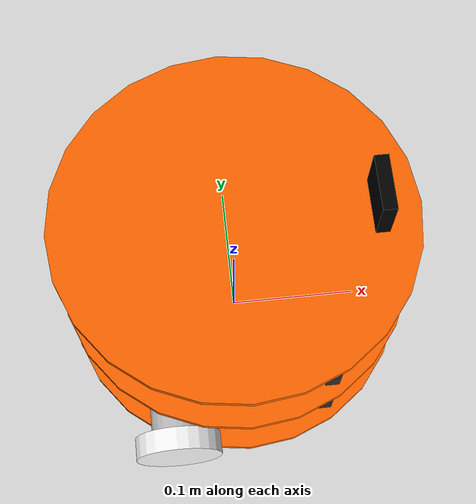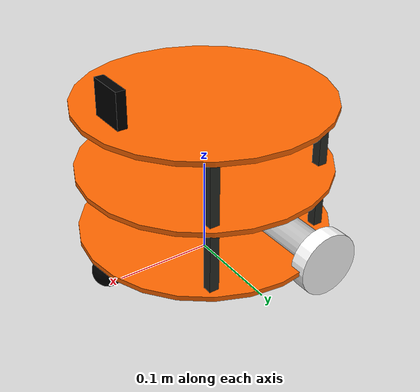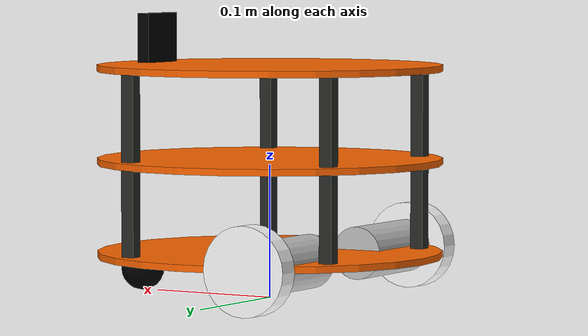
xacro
<?xml version="1.0"?>
<robot name="mrobot" xmlns:xacro="http://www.ros.org/wiki/xacro">

    <xacro:include filename="$(find mrobot_description)/urdf/mrobot_body.urdf.xacro" />
    <xacro:include filename="$(find mrobot_description)/urdf/camera.xacro" />

    <xacro:property name="camera_offset_x" value="0.1" />
    <xacro:property name="camera_offset_y" value="0" />
    <xacro:property name="camera_offset_z" value="0.02" />

    <!-- MRobot机器人平台-->
    <xacro:mrobot_body/>

    <!-- Camera -->
    <joint name="camera_joint" type="fixed">
        <origin xyz="${camera_offset_x} ${camera_offset_y} ${camera_offset_z}" rpy="0 0 0" />
        <parent link="plate_2_link"/>
        <child link="camera_link"/>
    </joint>

    <xacro:usb_camera prefix="camera"/>

</robot>

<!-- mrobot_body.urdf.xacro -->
<robot name="mrobot" xmlns:xacro="http://www.ros.org/wiki/xacro">

    <xacro:property name="M_PI" value="3.14159"/>
    <xacro:property name="wheel_radius" value="0.033"/>
    <xacro:property name="wheel_length" value="0.017"/>
    <xacro:property name="base_link_radius" value="0.13"/>
    <xacro:property name="base_link_length" value="0.005"/>
    <xacro:property name="motor_radius" value="0.02"/>
    <xacro:property name="motor_length" value="0.08"/>
    <xacro:property name="motor_x" value="-0.055"/>
    <xacro:property name="motor_y" value="0.075"/>
    <xacro:property name="plate_height" value="0.07"/>
    <xacro:property name="standoff_x" value="0.12"/>
    <xacro:property name="standoff_y" value="0.10"/>

    <!-- 定义MRobot本体的宏 -->
    <xacro:macro name="mrobot_standoff_2in" params="parent number x_loc y_loc z_loc">
        <joint name="standoff_2in_${number}_joint" type="fixed">
            <origin xyz="${x_loc} ${y_loc} ${z_loc}" rpy="0 0 0" />
            <parent link="${parent}"/>
            <child link="standoff_2in_${number}_link" />
        </joint>

        <link name="standoff_2in_${number}_link">
            <inertial>
                <mass value="0.001" />
                <origin xyz="0 0 0" />
                <inertia ixx="0.0001" ixy="0.0" ixz="0.0"
                         iyy="0.0001" iyz="0.0"
                         izz="0.0001" />
            </inertial>

            <visual>
                <origin xyz=" 0 0 0 " rpy="0 0 0" />
                <geometry>
                    <box size="0.01 0.01 0.07" />
                </geometry>
                <material name="black">
                    <color rgba="0.16 0.17 0.15 0.9"/>
                </material>
            </visual>

            <collision>
                <origin xyz="0.0 0.0 0.0" rpy="0 0 0" />
                <geometry>
                    <box size="0.01 0.01 0.07" />
                </geometry>
            </collision>
        </link>
    </xacro:macro>

    <xacro:macro name="mrobot_body">
        <material name="Green">
            <color rgba="0.0 0.8 0.0 1.0"/>
        </material>
        <material name="yellow">
            <color rgba="1 0.4 0 1"/>
        </material>
        <material name="black">
            <color rgba="0 0 0 0.95"/>
        </material>
        <material name="gray">
            <color rgba="0.75 0.75 0.75 1"/>
        </material>

        <link name="base_footprint">
            <visual>
                <origin xyz="0 0 0" rpy="0 0 0" />
                <geometry>
                    <box size="0.001 0.001 0.001" />
                </geometry>
            </visual>
        </link>

        <link name="base_link">
            <inertial>
                <mass value="2" />
                <origin xyz="0 0 0.0" />
                <inertia ixx="0.01" ixy="0.0" ixz="0.0"
                         iyy="0.01" iyz="0.0" izz="0.5" />
            </inertial>

            <visual>
                <origin xyz=" 0 0 0" rpy="0 0 0" />
                <geometry>
                    <cylinder length="${base_link_length}" radius="${base_link_radius}"/>
                </geometry>
                <material name="yellow" />
            </visual>

            <collision>
                <origin xyz="0 0 0" rpy="0 0 0" />
                <geometry>
                    <cylinder length="${base_link_length}" radius="${base_link_radius}"/>
                </geometry>
            </collision>
        </link>

        <joint name="base_footprint_joint" type="fixed">
            <origin xyz="0 0 ${wheel_radius}" rpy="0 0 0" />
            <parent link="base_footprint"/>
            <child link="base_link" />
        </joint>

        <link name="left_motor">
            <inertial>
                <origin xyz="0.0 0 0"/>
                <mass value="0.1" />
                <inertia ixx="0.001" ixy="0.0" ixz="0.0"
                         iyy="0.001" iyz="0.0" izz="0.001" />
            </inertial>

            <visual>
                <origin xyz="0 0 0" rpy="${M_PI/2} 0 0" />
                <geometry>
                    <cylinder radius="${motor_radius}" length = "${motor_length}"/>
                </geometry>
                <material name="gray" />
            </visual>

            <collision>
                <origin xyz="0 0 0" rpy="${M_PI/2} 0 0" />
                <geometry>
                    <cylinder radius="${motor_radius}" length = "${motor_length}"/>
                </geometry>
            </collision>
        </link>

        <joint name="base_left_motor_joint" type="fixed">
            <origin xyz="${motor_x} ${motor_y} 0" rpy="0 0 0" />
            <parent link="base_link"/>
            <child link="left_motor" />
        </joint>

        <link name="left_wheel_link">
            <inertial>
                <origin xyz="0 0 0"/>
                <mass value="0.01" />
                <inertia ixx="0.001" ixy="0.0" ixz="0.0"
                         iyy="0.001" iyz="0.0" izz="0.001" />
            </inertial>

            <visual>
                <origin xyz="0 0 0" rpy="${M_PI/2} 0 0" />
                <geometry>
                    <cylinder radius="${wheel_radius}" length = "${wheel_length}"/>
                </geometry>
                <material name="white">
                    <color rgba="1 1 1 0.9"/>
                </material>
            </visual>

            <collision>
                <origin xyz="0 0 0" rpy="${M_PI/2} 0 0" />
                <geometry>
                    <cylinder radius="${wheel_radius}" length = "${wheel_length}"/>
                </geometry>
            </collision>
        </link>

        <joint name="left_wheel_joint" type="continuous">
            <origin xyz="0 ${(motor_length+wheel_length)/2} 0" rpy="0 0 0"/>
            <parent link="left_motor"/>
            <child link="left_wheel_link"/>
            <axis xyz="0 1 0"/>
        </joint>

        <link name="right_motor">
            <inertial>
                <origin xyz="0.0 0 0"/>
                <mass value="0.1" />
                <inertia ixx="0.001" ixy="0.0" ixz="0.0"
                         iyy="0.001" iyz="0.0" izz="0.001" />
            </inertial>

            <visual>
                <origin xyz="0 0 0" rpy="${M_PI/2} 0 0" />
                <geometry>
                    <cylinder radius="${motor_radius}" length = "${motor_length}" />
                </geometry>
                <material name="gray" />
            </visual>

            <collision>
                <origin xyz="0 0 0" rpy="${M_PI/2} 0 0" />
                <geometry>
                    <cylinder radius="${motor_radius}" length = "${motor_length}"/>
                </geometry>
            </collision>
        </link>

        <joint name="base_right_motor_joint" type="fixed">
            <origin xyz="${motor_x} -${motor_y} 0" rpy="0 0 0" />
            <parent link="base_link"/>
            <child link="right_motor" />
        </joint>

        <link name="right_wheel_link">
            <inertial>
                <origin xyz="0 0 0"/>
                <mass value="0.01" />
                <inertia ixx="0.001" ixy="0.0" ixz="0.0"
                         iyy="0.001" iyz="0.0" izz="0.001" />
            </inertial>

            <visual>
                <origin xyz="0 0 0" rpy="${M_PI/2} 0 0" />
                <geometry>
                    <cylinder radius="${wheel_radius}" length = "${wheel_length}"/>
                </geometry>
                <material name="white">
                    <color rgba="1 1 1 0.9"/>
                </material>
            </visual>

            <collision>
                <origin xyz="0 0 0" rpy="${M_PI/2} 0 0" />
                <geometry>
                    <cylinder radius="${wheel_radius}" length = "${wheel_length}"/>
                </geometry>
            </collision>
        </link>

        <joint name="right_wheel_joint" type="continuous">
            <origin xyz="0 -${(motor_length+wheel_length)/2} 0" rpy="0 0 0"/>
            <parent link="right_motor"/>
            <child link="right_wheel_link"/>
            <axis xyz="0 1 0"/>
        </joint>

        <link name="front_caster_link">
            <inertial>
                <origin xyz="0 0 0"/>
                <mass value="0.001" />
                <inertia ixx="0.0001" ixy="0.0" ixz="0.0"
                         iyy="0.0001" iyz="0.0" izz="0.0001" />
            </inertial>

            <visual>
                <origin xyz="0 0 0" rpy="${M_PI/2} 0 0"/>
                <geometry>
                    <sphere radius="${wheel_radius/2}" />
                </geometry>
                <material name="black" />
            </visual>

            <collision>
                <origin xyz="0 0 0.01" rpy="${M_PI/2} 0 0" />
                <geometry>
                    <sphere radius="${wheel_radius/2}" />
                </geometry>
            </collision>
        </link>

        <joint name="front_caster_joint" type="fixed">
            <origin xyz="${base_link_radius-wheel_radius/2} 0 -${wheel_radius/2}" rpy="0 0 0"/>
            <parent link="base_link"/>
            <child link="front_caster_link"/>
        </joint>

        <xacro:mrobot_standoff_2in parent="base_link" number="1" x_loc="-${standoff_x/2 + 0.03}" y_loc="-${standoff_y - 0.03}" z_loc="${plate_height/2}"/>
        <xacro:mrobot_standoff_2in parent="base_link" number="2" x_loc="-${standoff_x/2 + 0.03}" y_loc="${standoff_y - 0.03}" z_loc="${plate_height/2}"/>
        <xacro:mrobot_standoff_2in parent="base_link" number="3" x_loc="${standoff_x/2}" y_loc="-${standoff_y}" z_loc="${plate_height/2}"/>
        <xacro:mrobot_standoff_2in parent="base_link" number="4" x_loc="${standoff_x/2}" y_loc="${standoff_y}" z_loc="${plate_height/2}"/>

        <joint name="plate_1_joint" type="fixed">
            <origin xyz="0 0 ${plate_height}" rpy="0 0 0" />
            <parent link="base_link"/>
            <child link="plate_1_link" />
        </joint>

        <link name="plate_1_link">
            <inertial>
                <mass value="0.1" />
                <origin xyz="0 0 0" />
                <inertia ixx="0.01" ixy="0.0" ixz="0.0"
                         iyy="0.01" iyz="0.0" izz="0.01" />
            </inertial>

            <visual>
                <origin xyz=" 0 0 0 " rpy="0 0 0" />
                <geometry>
                    <cylinder length="${base_link_length}" radius="${base_link_radius}"/>
                </geometry>
                <material name="yellow"/>
            </visual>

            <collision>
                <origin xyz="0.0 0.0 0.0" rpy="0 0 0" />
                <geometry>
                    <cylinder length="${base_link_length}" radius="${base_link_radius}"/>
                </geometry>
            </collision>
        </link>

        <xacro:mrobot_standoff_2in parent="standoff_2in_1_link" number="5" x_loc="0" y_loc="0" z_loc="${plate_height}"/>
        <xacro:mrobot_standoff_2in parent="standoff_2in_2_link" number="6" x_loc="0" y_loc="0" z_loc="${plate_height}"/>
        <xacro:mrobot_standoff_2in parent="standoff_2in_3_link" number="7" x_loc="0" y_loc="0" z_loc="${plate_height}"/>
        <xacro:mrobot_standoff_2in parent="standoff_2in_4_link" number="8" x_loc="0" y_loc="0" z_loc="${plate_height}"/>

        <joint name="plate_2_joint" type="fixed">
            <origin xyz="0 0 ${plate_height}" rpy="0 0 0" />
            <parent link="plate_1_link"/>
            <child link="plate_2_link" />
        </joint>

        <link name="plate_2_link">
            <inertial>
                <mass value="0.01" />
                <origin xyz="0 0 0" />
                <inertia ixx="0.001" ixy="0.0" ixz="0.0"
                         iyy="0.001" iyz="0.0" izz="0.001" />
            </inertial>

            <visual>
                <origin xyz=" 0 0 0 " rpy="0 0 0" />
                <geometry>
                    <cylinder length="${base_link_length}" radius="${base_link_radius}"/>
                </geometry>
                <material name="yellow" />
            </visual>

            <collision>
                <origin xyz="0.0 0.0 0.0" rpy="0 0 0" />
                <geometry>
                    <cylinder length="${base_link_length}" radius="${base_link_radius}"/>
                </geometry>
            </collision>
        </link>

    </xacro:macro>

</robot>

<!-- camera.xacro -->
<robot xmlns:xacro="http://www.ros.org/wiki/xacro" name="camera">

    <xacro:macro name="usb_camera" params="prefix:=camera">
        <link name="${prefix}_link">
            <inertial>
                <mass value="0.1" />
                <origin xyz="0 0 0" />
                <inertia ixx="0.01" ixy="0.0" ixz="0.0"
                         iyy="0.01" iyz="0.0"
                         izz="0.01" />
            </inertial>

            <visual>
                <origin xyz=" 0 0 0 " rpy="0 0 0" />
                <geometry>
                    <box size="0.01 0.04 0.04" />
                </geometry>
                <material name="black"/>
            </visual>

            <collision>
                <origin xyz="0.0 0.0 0.0" rpy="0 0 0" />
                <geometry>
                    <box size="0.01 0.04 0.04" />
                </geometry>
            </collision>
        </link>
    </xacro:macro>

</robot>
